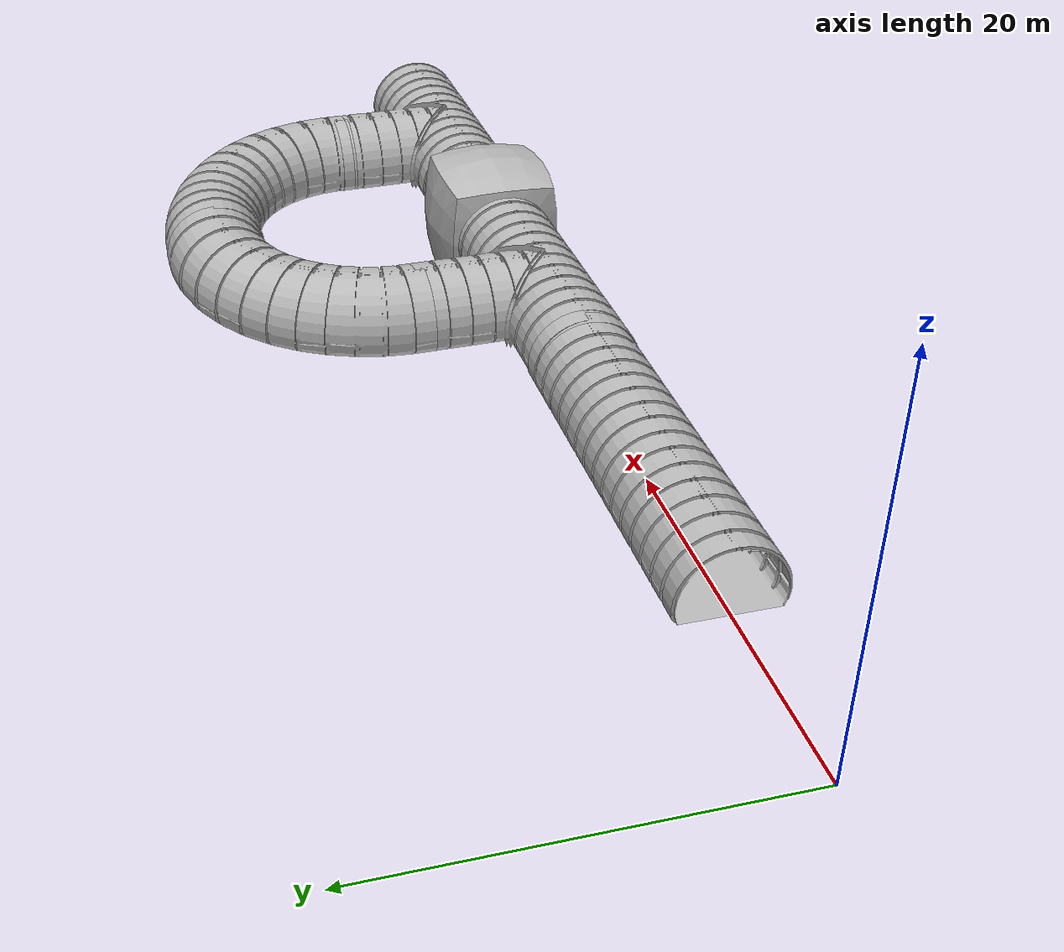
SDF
<sdf version="1.6">
 <world name="prueba">
  <scene>
   <ambient>0.2 0.2 0.2 1.0</ambient>
   <background>0.34 0.39 0.43 1.0</background>
   <grid>false</grid>
   <origin_visual>false</origin_visual>
  </scene>
  <light name="user_point_light_0" type="point">
   <pose>30.0 0.0 3.0 0 -0 0</pose>
   <diffuse>0.5 0.5 0.5 1</diffuse>
   <specular>0.1 0.1 0.1 1</specular>
   <attenuation>
    <range>40</range>
    <constant>0.05</constant>
    <linear>0.0</linear>
    <quadratic>0.0</quadratic>
   </attenuation>
   <cast_shadows>0</cast_shadows>
   <direction>0 0 -1</direction>
  </light>
  <light name="user_point_light_1" type="point">
   <pose>60.0 0.0 3.0 0 -0 0</pose>
   <diffuse>0.5 0.5 0.5 1</diffuse>
   <specular>0.1 0.1 0.1 1</specular>
   <attenuation>
    <range>40</range>
    <constant>0.05</constant>
    <linear>0.0</linear>
    <quadratic>0.0</quadratic>
   </attenuation>
   <cast_shadows>0</cast_shadows>
   <direction>0 0 -1</direction>
  </light>
  <light name="user_point_light_2" type="point">
   <pose>90.0 0.0 3.0 0 -0 0</pose>
   <diffuse>0.5 0.5 0.5 1</diffuse>
   <specular>0.1 0.1 0.1 1</specular>
   <attenuation>
    <range>40</range>
    <constant>0.05</constant>
    <linear>0.0</linear>
    <quadratic>0.0</quadratic>
   </attenuation>
   <cast_shadows>0</cast_shadows>
   <direction>0 0 -1</direction>
  </light>
  <light name="user_point_light_3" type="point">
   <pose>120.0 0.0 3.0 0 -0 0</pose>
   <diffuse>0.5 0.5 0.5 1</diffuse>
   <specular>0.1 0.1 0.1 1</specular>
   <attenuation>
    <range>40</range>
    <constant>0.05</constant>
    <linear>0.0</linear>
    <quadratic>0.0</quadratic>
   </attenuation>
   <cast_shadows>0</cast_shadows>
   <direction>0 0 -1</direction>
  </light>
  <light name="user_point_light_4" type="point">
   <pose>150.0 0.0 3.0 0 -0 0</pose>
   <diffuse>0.5 0.5 0.5 1</diffuse>
   <specular>0.1 0.1 0.1 1</specular>
   <attenuation>
    <range>40</range>
    <constant>0.05</constant>
    <linear>0.0</linear>
    <quadratic>0.0</quadratic>
   </attenuation>
   <cast_shadows>0</cast_shadows>
   <direction>0 0 -1</direction>
  </light>
  <light name="user_point_light_5" type="point">
   <pose>180.0 0.0 3.0 0 -0 0</pose>
   <diffuse>0.5 0.5 0.5 1</diffuse>
   <specular>0.1 0.1 0.1 1</specular>
   <attenuation>
    <range>40</range>
    <constant>0.05</constant>
    <linear>0.0</linear>
    <quadratic>0.0</quadratic>
   </attenuation>
   <cast_shadows>0</cast_shadows>
   <direction>0 0 -1</direction>
  </light>
  <light name="user_point_light_6" type="point">
   <pose>210.0 0.0 3.0 0 -0 0</pose>
   <diffuse>0.5 0.5 0.5 1</diffuse>
   <specular>0.1 0.1 0.1 1</specular>
   <attenuation>
    <range>40</range>
    <constant>0.05</constant>
    <linear>0.0</linear>
    <quadratic>0.0</quadratic>
   </attenuation>
   <cast_shadows>0</cast_shadows>
   <direction>0 0 -1</direction>
  </light>
  <light name="user_point_light_7" type="point">
   <pose>240.0 0.0 3.0 0 -0 0</pose>
   <diffuse>0.5 0.5 0.5 1</diffuse>
   <specular>0.1 0.1 0.1 1</specular>
   <attenuation>
    <range>40</range>
    <constant>0.05</constant>
    <linear>0.0</linear>
    <quadratic>0.0</quadratic>
   </attenuation>
   <cast_shadows>0</cast_shadows>
   <direction>0 0 -1</direction>
  </light>
  <light name="user_point_light_8" type="point">
   <pose>270.0 0.0 3.0 0 -0 0</pose>
   <diffuse>0.5 0.5 0.5 1</diffuse>
   <specular>0.1 0.1 0.1 1</specular>
   <attenuation>
    <range>40</range>
    <constant>0.05</constant>
    <linear>0.0</linear>
    <quadratic>0.0</quadratic>
   </attenuation>
   <cast_shadows>0</cast_shadows>
   <direction>0 0 -1</direction>
  </light>
  <light name="user_point_light_9" type="point">
   <pose>300.0 0.0 3.0 0 -0 0</pose>
   <diffuse>0.5 0.5 0.5 1</diffuse>
   <specular>0.1 0.1 0.1 1</specular>
   <attenuation>
    <range>40</range>
    <constant>0.05</constant>
    <linear>0.0</linear>
    <quadratic>0.0</quadratic>
   </attenuation>
   <cast_shadows>0</cast_shadows>
   <direction>0 0 -1</direction>
  </light>
  <include><uri>model://tunnel_tile_5</uri><name>tile_1</name><pose>20 0 0 0 0 1.5708</pose></include>
  <include>
   <uri>model://tunnel_intersection_t</uri>
   <name>intersection_1</name>
   <pose>36 7.5 0 0 0 -3.13</pose>
  </include>
  <include><uri>model://tunnel_tile_blocker</uri><name>blocker_1</name><pose>46 0 0 0 0 1.5708</pose></include>
  <include><uri>model://tunnel_tile_2</uri><name>curve_1</name><pose>36 16.6 0 0 0 0</pose></include>
  <include><uri>model://tunnel_tile_2</uri><name>curve_2</name><pose>55.5 16.45 0 0 0 -1.58</pose></include>
  <include>
   <uri>model://tunnel_intersection_t</uri>
   <name>intersection_2</name>
   <pose>55.4 7.7 0 0 0 -3.13</pose>
  </include>
  <include><uri>model://Survivor Male</uri><name>survivor</name><pose>55 0 0 0 0 -1.5708</pose></include>
 </world>
</sdf>

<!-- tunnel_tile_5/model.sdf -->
<sdf version="1.6">
  <model name="tunnel_tile_5">
    <static>true</static>
    <link name="link">
      <collision name="collision">
        <geometry>
          <mesh>
            <uri>model://tunnel_tile_5/meshes/tunnel_tile_5.dae</uri>
          </mesh>
        </geometry>
      </collision>
      <collision name="collision_ground">
        <geometry>
          <box>
            <size>5 20 0.001</size>
          </box>
        </geometry>
      </collision>
      <visual name="visual">
        <geometry>
          <mesh>
            <uri>model://tunnel_tile_5/meshes/tunnel_tile_5.dae</uri>
          </mesh>
        </geometry>
      </visual>
    </link>
  </model>
</sdf>

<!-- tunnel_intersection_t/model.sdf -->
<sdf version="1.6">
  <model name="tunnel_intersection_t">
    <static>true</static>
    <link name="link">
      <collision name="collision">
        <geometry>
          <mesh>
            <scale>0.01 0.01 0.01</scale>
            <uri>model://tunnel_intersection_t/meshes/Tunnel_Intersection_T.obj</uri>
          </mesh>
        </geometry>
      </collision>
      <visual name="visual">
        <geometry>
          <mesh>
            <scale>0.01 0.01 0.01</scale>
            <uri>model://tunnel_intersection_t/meshes/Tunnel_Intersection_T.obj</uri>
          </mesh>
        </geometry>
      </visual>
    </link>
  </model>
</sdf>

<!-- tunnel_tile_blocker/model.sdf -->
<sdf version="1.6">
  <model name="tunnel_tile_blocker">
    <static>true</static>
    <link name="link">
      <pose>0 0 0 0 0 0</pose>
      <collision name="collision">
        <geometry>
          <mesh>
            <uri>model://tunnel_tile_blocker/meshes/tunnel_tile_blocker.dae</uri>
          </mesh>
        </geometry>
      </collision>
      <visual name="visual">
        <geometry>
          <mesh>
            <uri>model://tunnel_tile_blocker/meshes/tunnel_tile_blocker.dae</uri>
          </mesh>
        </geometry>
      </visual>
    </link>
  </model>
</sdf>

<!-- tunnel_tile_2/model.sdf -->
<sdf version="1.6">
  <model name="tunnel_tile_2">
    <static>true</static>
    <link name="link">
      <collision name="collision">
        <geometry>
          <mesh>
            <uri>model://tunnel_tile_2/meshes/tunnel_tile_2.dae</uri>
          </mesh>
        </geometry>
      </collision>
      <collision name="collision_ground">
        <pose>3.5 -3.5 0 0 0 0</pose>
        <geometry>
          <box>
            <size>13 13 0.001</size>
          </box>
        </geometry>
      </collision>
      <visual name="visual">
        <geometry>
          <mesh>
            <uri>model://tunnel_tile_2/meshes/tunnel_tile_2.dae</uri>
          </mesh>
        </geometry>
      </visual>
    </link>
  </model>
</sdf>

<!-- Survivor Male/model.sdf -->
<sdf version='1.6'>
  <model name='Survivor Male'>
    <static>true</static>
    <link name='link'>
      <pose>0 0 -0.837 0 0 0</pose>
      <collision name='collision'>
        <geometry>
          <mesh>
            <uri>model://Survivor Male/meshes/Survivor Male.dae</uri>
          </mesh>
        </geometry>
      </collision>
      <visual name='visual'>
        <geometry>
          <mesh>
            <uri>model://Survivor Male/meshes/Survivor Male.dae</uri>
          </mesh>
        </geometry>
      </visual>
    </link>
  </model>
</sdf>
